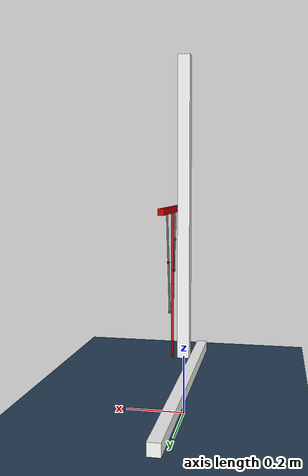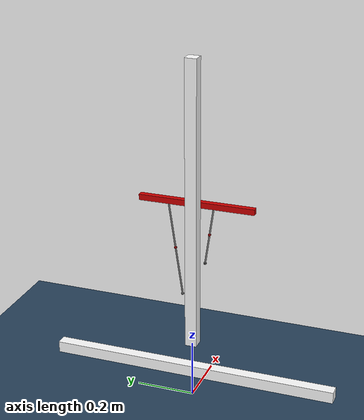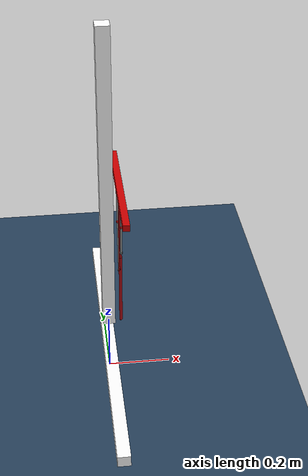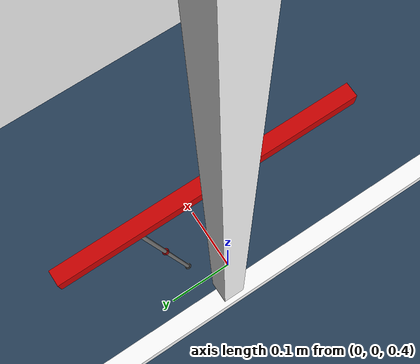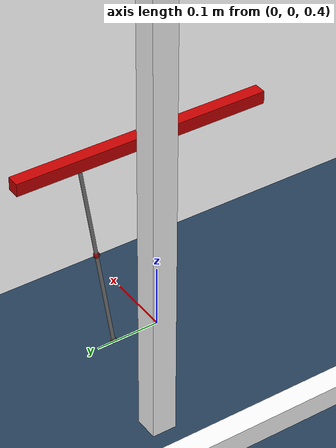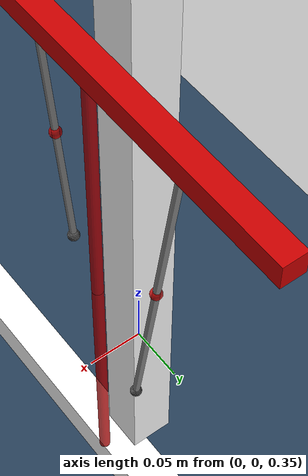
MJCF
<!-- Modified test: Ground contact model -->

<mujoco model="v2_4">
    <compiler angle="radian"/>
    <option timestep="0.001" iterations="2000" gravity="0 0 -9.8" tolerance="1e-10"/>

    <default>
        <geom density="418"/>
    </default>

        <asset>
                <texture name="grid" type="2d" builtin="checker" rgb1=".1 .2 .3"
                        rgb2=".2 .3 .4" width="300" height="300"/>
                <material name="grid" texture="grid" texrepeat="8 8" reflectance=".2"/>
        </asset>

        <worldbody>
                <light name="top" pos="0 0 5"/>
                <camera name="closeup" pos="1.483 -0.033 0.580" xyaxes="0.040 0.999 -0.000 -0.129 0.005 0.992"/>
                <geom size="10 10 .01" type="plane" material="grid" friction="1 0.005 0.0001"/>
                <body name="Horizontal_Rail" pos="0 0 0.1">
                        <geom size="0.02 0.5 0.02 " type="box" rgba="1 1 1 1" mass="1" contype="0" conaffinity="0"/>
                <body name="Vertical_Rail" pos="0 0 0.6">
                        <geom size="0.02 0.02 0.5" type="box" rgba="1 1 1 1" mass="0.00001" contype="0" conaffinity="0"/>
                        <joint name="Horizontal_connector" type="slide" axis="0 1 0" range="-1.57 1.57"/>
                <body name="base" pos="0.04 0 0">
                        <joint name="connector" type="slide" axis="0 0 1" range="-1 1"/>
                        <geom size="0.01 0.2 0.01" type="box" rgba="0.8 0 0 1" mass="0.155" contype="0" conaffinity="0"/>
                        <body name="RB_Thigh" pos="0 0 0">
                                <geom size="0.005" type="capsule" rgba="0.8 0 0 0.8" mass="0.086" fromto="0 0 0 0 0 -0.25" contype="0" conaffinity="0"/>
                                <joint name="RB_Shoulder" type="hinge" axis="1 0 0" range="-1.0471975512 1.0471975512"/>
                                <site name="C1" pos="0 -0.02999933715459505 -0.20999803968200498"/>
                                <body name="RB_Calf" pos="0 0 -0.25">
                                        <geom size="0.005" type="capsule" rgba="0.8 0 0 0.8" mass="0.1033" fromto="0 0 0 0 0 -0.25" contype="0" conaffinity="0"/>
                                        <joint name="RB_Elbow" type="hinge" axis="1 0 0" range="0 2.09"/>
                                        <site name="D1" pos="0  0.05 -0.08660254037844388"/>
                                        <body name="Foot" pos="0 0 -0.25">
                                                <geom size="0.005" type="sphere" rgba="0.8 0 0 0.8" mass="0.001" contype="0" conaffinity="0"/>
                                                <joint name="foot_weld" type="hinge" axis="1 0 0" range="-3.14 3.14"/>
                                        </body>
                                </body>
                        </body>
                        <body name="RB_MAA_UPLink" pos="0 -0.06 0" axisangle="1 0 0 0.1419014548">
                                <geom size="0.005" type="sphere" rgba="0.8 0 0 0.8" mass="0.03108" contype="0" conaffinity="0"/>
                                <site name="muscle0_uSite" pos="0 0 0"/>
                                <joint name="RB_MAA_UpJoint" type="hinge" axis="1 0 0"/>
                                <body name="RB_MAA_FM_Link" pos="0 0 -0.1060650937413537">
                                        <geom size="0.005" type="sphere" rgba="0.8 0 0 0.8" mass="0.12432" contype="0" conaffinity="0"/>
                                        <joint name="RB_MAA_SlideJoint" type="slide" axis="0 0 -1" damping="22.68" stiffness="637.52" springref="-0.019065093741353706"/>
                                        <body name="RB_MAA_LOLink" pos="0 0 -0.1060650937413537">
                                                <geom size="0.005" type="sphere" rgba="0.8 0 0 0.8" mass="0.03108" contype="0" conaffinity="0"/>
                                                <site name="muscle0_lSite" pos="0 0 0"/>
                                                <joint name="RB_MAA_FM_SlideJoint" type="slide" axis="0 0 -1" damping="22.68" stiffness="637.52" springref="-0.019065093741353706"/>
                                                <site name="C2"/>
                                        </body>
                                </body>
                        </body>
                        <body name="RB_BAA_UPLink" pos="0 0.1 0" axisangle="1 0 0 -0.147464847">
                                <geom size="0.005" type="sphere" rgba="0.8 0 0 0.8" mass="0.04544333333" contype="0" conaffinity="0"/>
                                <site name="muscle1_uSite" pos="0 0 0"/>
                                <joint name="RB_BAA_UpJoint" type="hinge" axis="1 0 0"/>
                                <body name="RB_BAA_FM_LINK" pos="0 0 -0.17014792842496052">
                                        <geom size="0.005" type="sphere" rgba="0.8 0 0 0.8" mass="0.1817733333" contype="0" conaffinity="0"/>
                                        <joint name="RB_BAA_SlideJoint" type="slide" axis="0 0 -1" damping="21.8" stiffness="631.6" springref="-0.044147928424960514"/>
                                        <body name="RB_BAA_LOLink" pos="0 0 -0.17014792842496052">
                                                <geom size="0.005" type="sphere" rgba="0.8 0 0 0.8" mass="0.04544333333" contype="0" conaffinity="0"/>
                                                <site name="muscle1_lSite" pos="0 0 0"/>
                                                <joint name="RB_BAA_FM_SlideJoint" type="slide" axis="0 0 -1" damping="21.8" stiffness="631.6" springref="-0.044147928424960514"/>
                                                <site name="D2"/>
                                        </body>
                                </body>
                        </body>
                </body>
                </body>
                </body>

        </worldbody>

                    <!-- Add 8 position controllers to joints like RB_BAA_LowerJoint, with position limits -->
        <actuator>
                <motor joint="RB_MAA_SlideJoint" ctrllimited="true" ctrlrange="-80 80" />
                <motor joint="RB_MAA_FM_SlideJoint" ctrllimited="true" ctrlrange="-80 80" />
                <motor joint="RB_BAA_SlideJoint" ctrllimited="true" ctrlrange="-80 80" />
                <motor joint="RB_BAA_FM_SlideJoint" ctrllimited="true" ctrlrange="-80 80" />
        </actuator>

        <!-- Establish parallel relationships, e.g., RB_BAA_LOLink should connect to RB_Calf -->
        <equality>
                <connect name="MAA_connect" anchor="0 0 0" body2="RB_Calf" body1="RB_BAA_LOLink" solimp="0.95 0.99 0.00001 0.1 2"/>
                <connect name="BAA_connect" anchor="0 0 0" body2="RB_Thigh" body1="RB_MAA_LOLink" solimp="0.95 0.99 0.00001 0.1 2"/>
                <connect name="foot_landed_weld" anchor="0 0 0" body2="Horizontal_Rail" body1="Foot" solimp="0.995 0.9995 0.00001 0.1 2"/>

                <!-- FM equality constraints -->
                <joint name="MAA" joint1="RB_MAA_SlideJoint" joint2="RB_MAA_FM_SlideJoint" solimp="0.95 0.99 0.00001 0.1 2"/>
                <joint name="BAA" joint1="RB_BAA_SlideJoint" joint2="RB_BAA_FM_SlideJoint" solimp="0.95 0.99 0.00001 0.1 2"/>
        </equality>

        <tendon>
                <spatial name="tendon_muscle0">
                        <site site="muscle0_uSite"/>
                        <site site="muscle0_lSite"/>
                </spatial>
                <spatial name="tendon_muscle1">
                        <site site="muscle1_uSite"/>
                        <site site="muscle1_lSite"/>
                </spatial>
        </tendon>

        <keyframe>
        </keyframe>

</mujoco>
